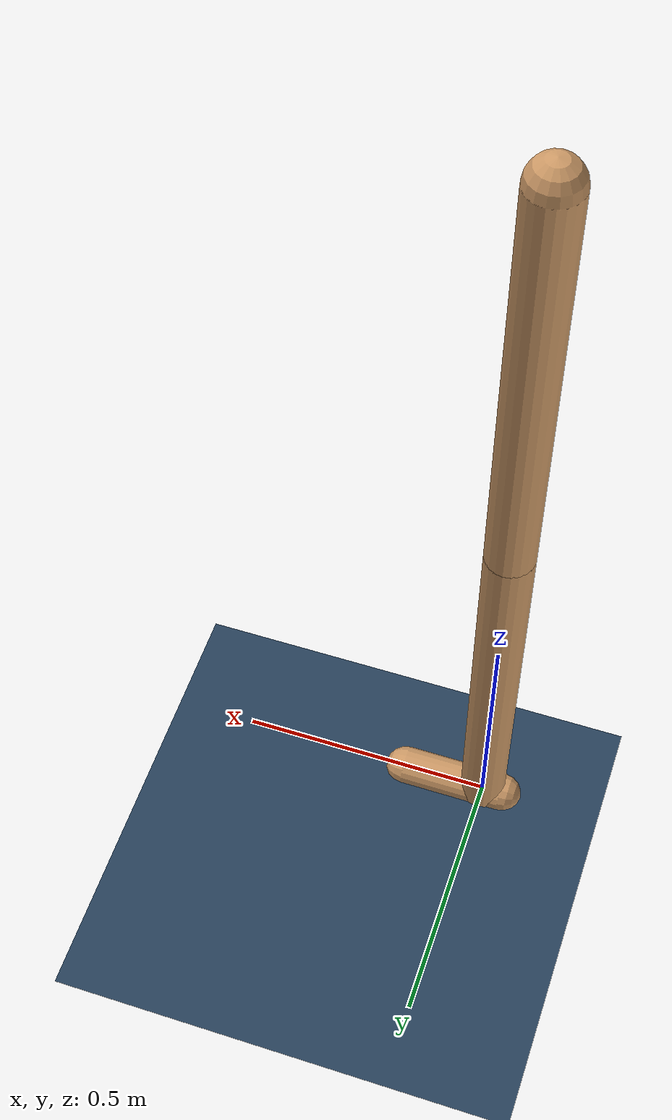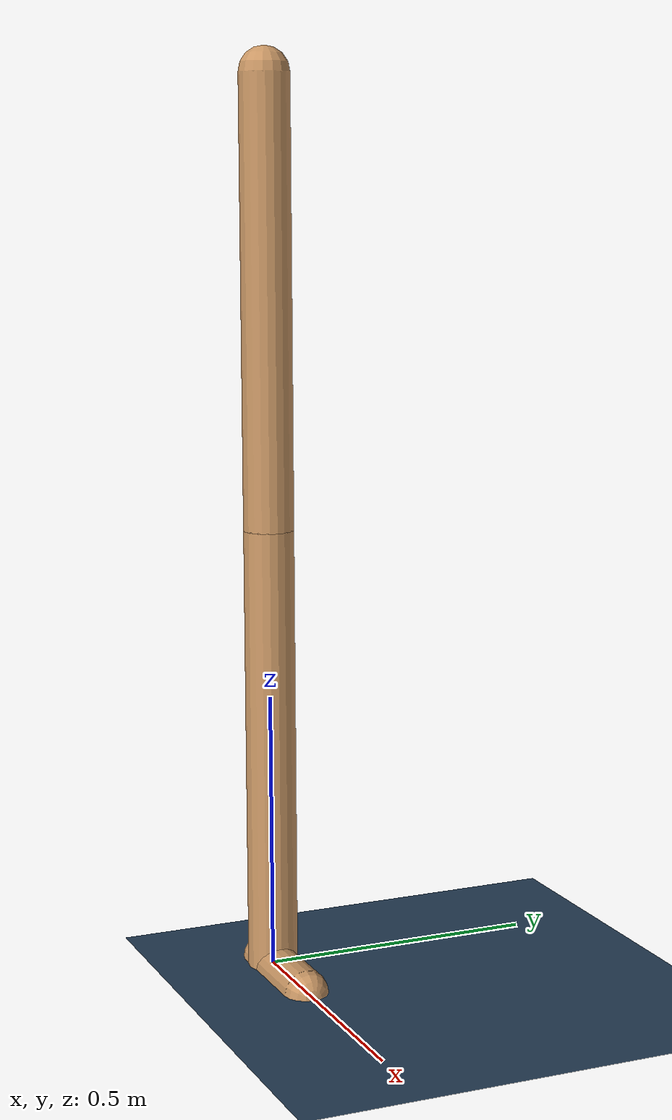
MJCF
<mujoco model="IDP_custom">
  <compiler angle="radian" coordinate="local" inertiafromgeom="false" />
  <default>
    <joint damping="0.0" />
    <geom contype="0" friction="0.0 0.0 0.0" />
  </default>
  <option gravity="0 0 -9.81" integrator="RK4" timestep="0.0083333333" />
  <size nstack="3000" nuser_actuator="10" nuserdata="100" />
  <asset>
    <texture type="skybox" builtin="gradient" rgb1=".3 .5 .7" rgb2="0 0 0" width="32" height="512"/>
    <texture name="grid" type="2d" builtin="checker" width="512" height="512" rgb1=".1 .2 .3" rgb2=".2 .3 .4"/>
    <material name="grid" texture="grid" texrepeat="1 1" texuniform="true" reflectance=".2"/>
  </asset>
  <worldbody>
    <light cutoff="100" diffuse="1 1 1" dir="-0 0 -1.3" directional="true" exponent="1" pos="0 0 1.3" specular=".1 .1 .1" />
    <geom name="floor" size="0 0 .09" type="plane" material="grid" contype="0" conaffinity="0" condim="3" friction="2.0 0 0"/>
    <body name="foot" euler="0 0 0" pos="0 0 0">
      <geom fromto="-0.04 0 0 0.164 0 0" name="foot" rgba="0.8 0.6 0.4 1.0" size="0.04" type="capsule" contype="1" conaffinity="1"/>
      <inertial diaginertia="0.0064 0.0064 0.0001" mass="1.6764" pos="0 0 0" />
      <freejoint name="root"/>
      <body name="leg" pos="0 0 0.516" euler="0 0 0">
        <joint axis="0 1 0" damping="0.0" limited="true" name="ank" pos="0 0 -0.516" range="-1.5 1.5" stiffness="0.0" type="hinge" />
        <geom fromto="0 0 -0.516 0 0 0.2890" name="leg" rgba="0.8 0.6 0.4 1.0" size="0.045" contype="0" type="capsule" />
        <inertial diaginertia="1.073581 1.073581 0.0001" mass="21.0865" pos="0 0 0" />
        <body name="body" pos="0 0 0.5831">
          <joint axis="0 1 0" damping="0.0" limited="true" name="hip" pos="0 0 -0.2941" range="-2.5 2.5" stiffness="0.0" type="hinge" />
          <geom fromto="0 0 -0.2941 0 0 0.5039" name="upper_body" rgba="0.8 0.6 0.4 1.0" size="0.045" contype="0" type="capsule" />
          <inertial diaginertia="1.432992 1.432992 0.0001" mass="43.4886" pos="0 0 0" />
        </body>
      </body>
    </body>
  </worldbody>
  <actuator>
    <motor ctrllimited="true" ctrlrange="-1.0 1.0" gear="80" joint="ank" name="ank"/>
    <motor ctrllimited="true" ctrlrange="-1.0 1.0" gear="150" joint="hip" name="hip"/>
  </actuator>
</mujoco>
